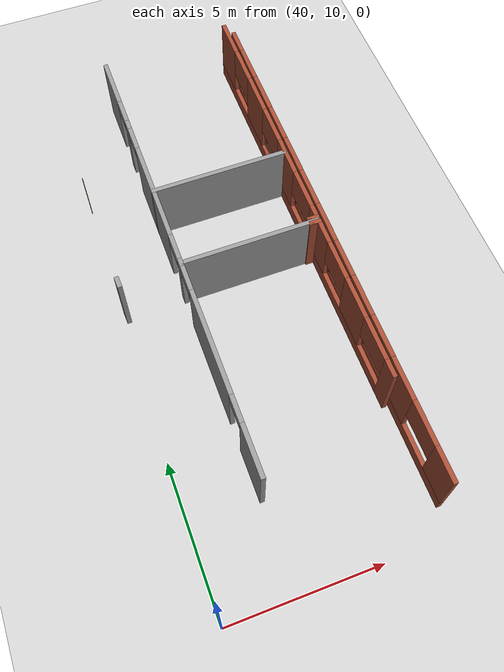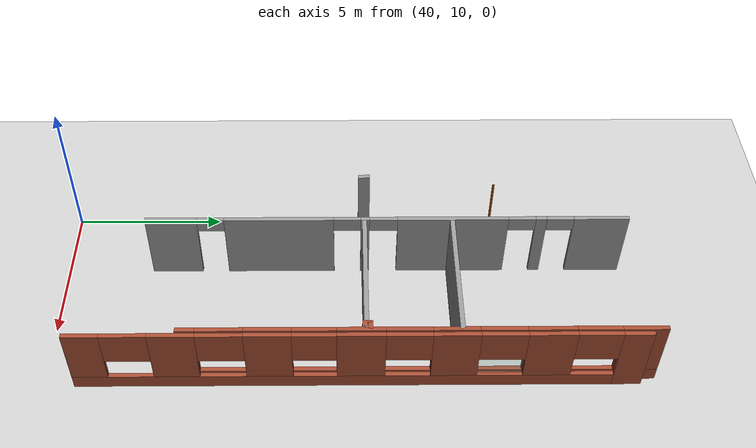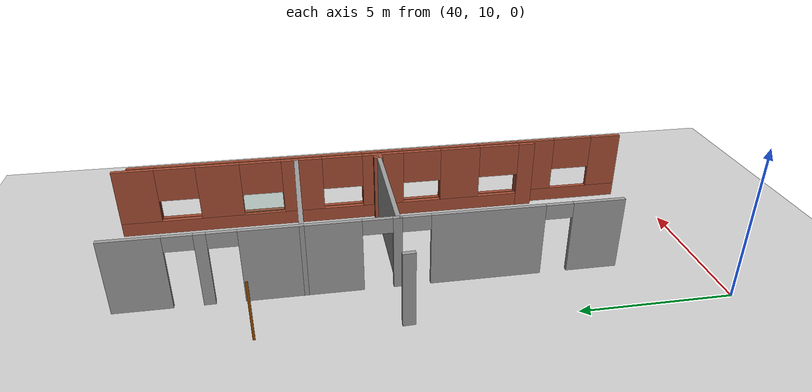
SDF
<sdf version="1.6">
 <world name="default">
  <model name="ground_plane">
   <static>1</static>
   <link name="link">
    <collision name="collision">
     <geometry><plane><normal>0 0 1</normal><size>100 100</size></plane></geometry>
     <surface><friction><ode><mu>100</mu><mu2>50</mu2></ode></friction></surface>
    </collision>
    <visual name="visual">
     <cast_shadows>0</cast_shadows>
     <geometry><plane><normal>0 0 1</normal><size>100 100</size></plane></geometry>
     <material>
      <script><uri>file://media/materials/scripts/gazebo.material</uri><name>Gazebo/Grey</name></script>
     </material>
    </visual>
   </link>
  </model>
  <model name="CVSSP">
   <pose>23.8714 24.094 0 0 -0 0</pose>
   <link name="Wall_134">
    <pose>23.0834 -2.24791 0 0 -0 1.57065</pose>
    <visual name="Wall_134_Visual_0">
     <pose>-7.19251 0 1.25 0 -0 0</pose>
     <geometry><box><size>0.601822 0.15 2.5</size></box></geometry>
     <material>
      <script><uri>file://media/materials/scripts/gazebo.material</uri><name>Gazebo/Bricks</name></script>
      <ambient>1 1 1 1</ambient>
     </material>
    </visual>
    <collision name="Wall_134_Collision_0">
     <geometry><box><size>0.601822 0.15 2.5</size></box></geometry>
     <pose>-7.19251 0 1.25 0 -0 0</pose>
    </collision>
    <visual name="Wall_134_Visual_1">
     <pose>0.300911 0 0.25 0 -0 0</pose>
     <geometry><box><size>14.385 0.15 0.5</size></box></geometry>
     <material>
      <script><uri>file://media/materials/scripts/gazebo.material</uri><name>Gazebo/Bricks</name></script>
      <ambient>1 1 1 1</ambient>
     </material>
    </visual>
    <collision name="Wall_134_Collision_1">
     <geometry><box><size>14.385 0.15 0.5</size></box></geometry>
     <pose>0.300911 0 0.25 0 -0 0</pose>
    </collision>
    <visual name="Wall_134_Visual_2">
     <pose>-4.69343 0 1.5 0 -0 0</pose>
     <geometry><box><size>1.46267 0.15 2</size></box></geometry>
     <material>
      <script><uri>file://media/materials/scripts/gazebo.material</uri><name>Gazebo/Bricks</name></script>
      <ambient>1 1 1 1</ambient>
     </material>
    </visual>
    <collision name="Wall_134_Collision_2">
     <geometry><box><size>1.46267 0.15 2</size></box></geometry>
     <pose>-4.69343 0 1.5 0 -0 0</pose>
    </collision>
    <visual name="Wall_134_Visual_3">
     <pose>-1.84084 0 1.5 0 -0 0</pose>
     <geometry><box><size>1.4912 0.15 2</size></box></geometry>
     <material>
      <script><uri>file://media/materials/scripts/gazebo.material</uri><name>Gazebo/Bricks</name></script>
      <ambient>1 1 1 1</ambient>
     </material>
    </visual>
    <collision name="Wall_134_Collision_3">
     <geometry><box><size>1.4912 0.15 2</size></box></geometry>
     <pose>-1.84084 0 1.5 0 -0 0</pose>
    </collision>
    <visual name="Wall_134_Visual_4">
     <pose>1.05448 0 1.5 0 -0 0</pose>
     <geometry><box><size>1.43416 0.15 2</size></box></geometry>
     <material>
      <script><uri>file://media/materials/scripts/gazebo.material</uri><name>Gazebo/Bricks</name></script>
      <ambient>1 1 1 1</ambient>
     </material>
    </visual>
    <collision name="Wall_134_Collision_4">
     <geometry><box><size>1.43416 0.15 2</size></box></geometry>
     <pose>1.05448 0 1.5 0 -0 0</pose>
    </collision>
    <visual name="Wall_134_Visual_5">
     <pose>3.9612 0 1.5 0 -0 0</pose>
     <geometry><box><size>1.50259 0.15 2</size></box></geometry>
     <material>
      <script><uri>file://media/materials/scripts/gazebo.material</uri><name>Gazebo/Bricks</name></script>
      <ambient>1 1 1 1</ambient>
     </material>
    </visual>
    <collision name="Wall_134_Collision_5">
     <geometry><box><size>1.50259 0.15 2</size></box></geometry>
     <pose>3.9612 0 1.5 0 -0 0</pose>
    </collision>
    <visual name="Wall_134_Visual_6">
     <pose>6.79134 0 1.5 0 -0 0</pose>
     <geometry><box><size>1.40418 0.15 2</size></box></geometry>
     <material>
      <script><uri>file://media/materials/scripts/gazebo.material</uri><name>Gazebo/Bricks</name></script>
      <ambient>1 1 1 1</ambient>
     </material>
    </visual>
    <collision name="Wall_134_Collision_6">
     <geometry><box><size>1.40418 0.15 2</size></box></geometry>
     <pose>6.79134 0 1.5 0 -0 0</pose>
    </collision>
    <visual name="Wall_134_Visual_7">
     <pose>-6.15818 0 1.9 0 -0 0</pose>
     <geometry><box><size>1.46684 0.15 1.2</size></box></geometry>
     <material>
      <script><uri>file://media/materials/scripts/gazebo.material</uri><name>Gazebo/Bricks</name></script>
      <ambient>1 1 1 1</ambient>
     </material>
    </visual>
    <collision name="Wall_134_Collision_7">
     <geometry><box><size>1.46684 0.15 1.2</size></box></geometry>
     <pose>-6.15818 0 1.9 0 -0 0</pose>
    </collision>
    <visual name="Wall_134_Visual_8">
     <pose>-3.27427 0 1.9 0 -0 0</pose>
     <geometry><box><size>1.37565 0.15 1.2</size></box></geometry>
     <material>
      <script><uri>file://media/materials/scripts/gazebo.material</uri><name>Gazebo/Bricks</name></script>
      <ambient>1 1 1 1</ambient>
     </material>
    </visual>
    <collision name="Wall_134_Collision_8">
     <geometry><box><size>1.37565 0.15 1.2</size></box></geometry>
     <pose>-3.27427 0 1.9 0 -0 0</pose>
    </collision>
    <visual name="Wall_134_Visual_9">
     <pose>-0.378919 0 1.9 0 -0 0</pose>
     <geometry><box><size>1.43264 0.15 1.2</size></box></geometry>
     <material>
      <script><uri>file://media/materials/scripts/gazebo.material</uri><name>Gazebo/Bricks</name></script>
      <ambient>1 1 1 1</ambient>
     </material>
    </visual>
    <collision name="Wall_134_Collision_9">
     <geometry><box><size>1.43264 0.15 1.2</size></box></geometry>
     <pose>-0.378919 0 1.9 0 -0 0</pose>
    </collision>
    <visual name="Wall_134_Visual_10">
     <pose>2.49073 0 1.9 0 -0 0</pose>
     <geometry><box><size>1.43834 0.15 1.2</size></box></geometry>
     <material>
      <script><uri>file://media/materials/scripts/gazebo.material</uri><name>Gazebo/Bricks</name></script>
      <ambient>1 1 1 1</ambient>
     </material>
    </visual>
    <collision name="Wall_134_Collision_10">
     <geometry><box><size>1.43834 0.15 1.2</size></box></geometry>
     <pose>2.49073 0 1.9 0 -0 0</pose>
    </collision>
    <visual name="Wall_134_Visual_11">
     <pose>5.40087 0 1.9 0 -0 0</pose>
     <geometry><box><size>1.37675 0.15 1.2</size></box></geometry>
     <material>
      <script><uri>file://media/materials/scripts/gazebo.material</uri><name>Gazebo/Bricks</name></script>
      <ambient>1 1 1 1</ambient>
     </material>
    </visual>
    <collision name="Wall_134_Collision_11">
     <geometry><box><size>1.37675 0.15 1.2</size></box></geometry>
     <pose>5.40087 0 1.9 0 -0 0</pose>
    </collision>
   </link>
   <link name="Wall_148">
    <pose>23.2939 -4.18787 0 0 0 -1.5707</pose>
    <visual name="Wall_148_Visual_0">
     <pose>-8.49404 0 1.25 0 -0 0</pose>
     <geometry><box><size>0.935478 0.15 2.5</size></box></geometry>
     <material>
      <script><uri>file://media/materials/scripts/gazebo.material</uri><name>Gazebo/Bricks</name></script>
      <ambient>1 1 1 1</ambient>
     </material>
    </visual>
    <collision name="Wall_148_Collision_0">
     <geometry><box><size>0.935478 0.15 2.5</size></box></geometry>
     <pose>-8.49404 0 1.25 0 -0 0</pose>
    </collision>
    <visual name="Wall_148_Visual_1">
     <pose>0.467739 0 0.25 0 -0 0</pose>
     <geometry><box><size>16.9881 0.15 0.5</size></box></geometry>
     <material>
      <script><uri>file://media/materials/scripts/gazebo.material</uri><name>Gazebo/Bricks</name></script>
      <ambient>1 1 1 1</ambient>
     </material>
    </visual>
    <collision name="Wall_148_Collision_1">
     <geometry><box><size>16.9881 0.15 0.5</size></box></geometry>
     <pose>0.467739 0 0.25 0 -0 0</pose>
    </collision>
    <visual name="Wall_148_Visual_2">
     <pose>-5.90972 0 1.5 0 -0 0</pose>
     <geometry><box><size>1.49689 0.15 2</size></box></geometry>
     <material>
      <script><uri>file://media/materials/scripts/gazebo.material</uri><name>Gazebo/Bricks</name></script>
      <ambient>1 1 1 1</ambient>
     </material>
    </visual>
    <collision name="Wall_148_Collision_2">
     <geometry><box><size>1.49689 0.15 2</size></box></geometry>
     <pose>-5.90972 0 1.5 0 -0 0</pose>
    </collision>
    <visual name="Wall_148_Visual_3">
     <pose>-3.00584 0 1.5 0 -0 0</pose>
     <geometry><box><size>1.45698 0.15 2</size></box></geometry>
     <material>
      <script><uri>file://media/materials/scripts/gazebo.material</uri><name>Gazebo/Bricks</name></script>
      <ambient>1 1 1 1</ambient>
     </material>
    </visual>
    <collision name="Wall_148_Collision_3">
     <geometry><box><size>1.45698 0.15 2</size></box></geometry>
     <pose>-3.00584 0 1.5 0 -0 0</pose>
    </collision>
    <visual name="Wall_148_Visual_4">
     <pose>-0.101966 0 1.5 0 -0 0</pose>
     <geometry><box><size>1.50828 0.15 2</size></box></geometry>
     <material>
      <script><uri>file://media/materials/scripts/gazebo.material</uri><name>Gazebo/Bricks</name></script>
      <ambient>1 1 1 1</ambient>
     </material>
    </visual>
    <collision name="Wall_148_Collision_4">
     <geometry><box><size>1.50828 0.15 2</size></box></geometry>
     <pose>-0.101966 0 1.5 0 -0 0</pose>
    </collision>
    <visual name="Wall_148_Visual_5">
     <pose>2.74776 0 1.5 0 -0 0</pose>
     <geometry><box><size>1.46268 0.15 2</size></box></geometry>
     <material>
      <script><uri>file://media/materials/scripts/gazebo.material</uri><name>Gazebo/Bricks</name></script>
      <ambient>1 1 1 1</ambient>
     </material>
    </visual>
    <collision name="Wall_148_Collision_5">
     <geometry><box><size>1.46268 0.15 2</size></box></geometry>
     <pose>2.74776 0 1.5 0 -0 0</pose>
    </collision>
    <visual name="Wall_148_Visual_6">
     <pose>5.65733 0 1.5 0 -0 0</pose>
     <geometry><box><size>1.44558 0.15 2</size></box></geometry>
     <material>
      <script><uri>file://media/materials/scripts/gazebo.material</uri><name>Gazebo/Bricks</name></script>
      <ambient>1 1 1 1</ambient>
     </material>
    </visual>
    <collision name="Wall_148_Collision_6">
     <geometry><box><size>1.44558 0.15 2</size></box></geometry>
     <pose>5.65733 0 1.5 0 -0 0</pose>
    </collision>
    <visual name="Wall_148_Visual_7">
     <pose>8.39012 0 1.5 0 -0 0</pose>
     <geometry><box><size>1.14332 0.15 2</size></box></geometry>
     <material>
      <script><uri>file://media/materials/scripts/gazebo.material</uri><name>Gazebo/Bricks</name></script>
      <ambient>1 1 1 1</ambient>
     </material>
    </visual>
    <collision name="Wall_148_Collision_7">
     <geometry><box><size>1.14332 0.15 2</size></box></geometry>
     <pose>8.39012 0 1.5 0 -0 0</pose>
    </collision>
    <visual name="Wall_148_Visual_8">
     <pose>-7.34223 0 1.9 0 -0 0</pose>
     <geometry><box><size>1.36813 0.15 1.2</size></box></geometry>
     <material>
      <script><uri>file://media/materials/scripts/gazebo.material</uri><name>Gazebo/Bricks</name></script>
      <ambient>1 1 1 1</ambient>
     </material>
    </visual>
    <collision name="Wall_148_Collision_8">
     <geometry><box><size>1.36813 0.15 1.2</size></box></geometry>
     <pose>-7.34223 0 1.9 0 -0 0</pose>
    </collision>
    <visual name="Wall_148_Visual_9">
     <pose>-4.4478 0 1.9 0 -0 0</pose>
     <geometry><box><size>1.42694 0.15 1.2</size></box></geometry>
     <material>
      <script><uri>file://media/materials/scripts/gazebo.material</uri><name>Gazebo/Bricks</name></script>
      <ambient>1 1 1 1</ambient>
     </material>
    </visual>
    <collision name="Wall_148_Collision_9">
     <geometry><box><size>1.42694 0.15 1.2</size></box></geometry>
     <pose>-4.4478 0 1.9 0 -0 0</pose>
    </collision>
    <visual name="Wall_148_Visual_10">
     <pose>-1.56673 0 1.9 0 -0 0</pose>
     <geometry><box><size>1.42124 0.15 1.2</size></box></geometry>
     <material>
      <script><uri>file://media/materials/scripts/gazebo.material</uri><name>Gazebo/Bricks</name></script>
      <ambient>1 1 1 1</ambient>
     </material>
    </visual>
    <collision name="Wall_148_Collision_10">
     <geometry><box><size>1.42124 0.15 1.2</size></box></geometry>
     <pose>-1.56673 0 1.9 0 -0 0</pose>
    </collision>
    <visual name="Wall_148_Visual_11">
     <pose>1.3343 0 1.9 0 -0 0</pose>
     <geometry><box><size>1.36425 0.15 1.2</size></box></geometry>
     <material>
      <script><uri>file://media/materials/scripts/gazebo.material</uri><name>Gazebo/Bricks</name></script>
      <ambient>1 1 1 1</ambient>
     </material>
    </visual>
    <collision name="Wall_148_Collision_11">
     <geometry><box><size>1.36425 0.15 1.2</size></box></geometry>
     <pose>1.3343 0 1.9 0 -0 0</pose>
    </collision>
    <visual name="Wall_148_Visual_12">
     <pose>4.20682 0 1.9 0 -0 0</pose>
     <geometry><box><size>1.45543 0.15 1.2</size></box></geometry>
     <material>
      <script><uri>file://media/materials/scripts/gazebo.material</uri><name>Gazebo/Bricks</name></script>
      <ambient>1 1 1 1</ambient>
     </material>
    </visual>
    <collision name="Wall_148_Collision_12">
     <geometry><box><size>1.45543 0.15 1.2</size></box></geometry>
     <pose>4.20682 0 1.9 0 -0 0</pose>
    </collision>
    <visual name="Wall_148_Visual_13">
     <pose>7.09929 0 1.9 0 -0 0</pose>
     <geometry><box><size>1.43834 0.15 1.2</size></box></geometry>
     <material>
      <script><uri>file://media/materials/scripts/gazebo.material</uri><name>Gazebo/Bricks</name></script>
      <ambient>1 1 1 1</ambient>
     </material>
    </visual>
    <collision name="Wall_148_Collision_13">
     <geometry><box><size>1.43834 0.15 1.2</size></box></geometry>
     <pose>7.09929 0 1.9 0 -0 0</pose>
    </collision>
   </link>
   <link name="Wall_168">
    <collision name="Wall_168_Collision">
     <geometry><box><size>4.75 0.15 2.5</size></box></geometry>
     <pose>0 0 1.25 0 -0 0</pose>
    </collision>
    <visual name="Wall_168_Visual">
     <pose>0 0 1.25 0 -0 0</pose>
     <geometry><box><size>4.75 0.15 2.5</size></box></geometry>
     <material>
      <script><uri>file://media/materials/scripts/gazebo.material</uri><name>Gazebo/Grey</name></script>
      <ambient>0.588235 0.588235 0.588235 1</ambient>
     </material>
    </visual>
    <pose>20.7514 -3.92247 0 0 -0 0</pose>
   </link>
   <link name="Wall_170">
    <collision name="Wall_170_Collision">
     <geometry><box><size>4.75 0.15 2.5</size></box></geometry>
     <pose>0 0 1.25 0 -0 0</pose>
    </collision>
    <visual name="Wall_170_Visual">
     <pose>0 0 1.25 0 -0 0</pose>
     <geometry><box><size>4.75 0.15 2.5</size></box></geometry>
     <material>
      <script><uri>file://media/materials/scripts/gazebo.material</uri><name>Gazebo/Grey</name></script>
      <ambient>0.588235 0.588235 0.588235 1</ambient>
     </material>
    </visual>
    <pose>20.7313 -1.006 0 0 -0 0</pose>
   </link>
   <link name="Wall_67">
    <pose>18.433 -3.16776 0 0 -0 1.57026</pose>
    <visual name="Wall_67_Visual_0">
     <pose>-7.18077 0 1.25 0 -0 0</pose>
     <geometry><box><size>1.71739 0.15 2.5</size></box></geometry>
     <material>
      <script><uri>file://media/materials/scripts/gazebo.material</uri><name>Gazebo/Grey</name></script>
      <ambient>0.588235 0.588235 0.588235 1</ambient>
     </material>
    </visual>
    <collision name="Wall_67_Collision_0">
     <geometry><box><size>1.71739 0.15 2.5</size></box></geometry>
     <pose>-7.18077 0 1.25 0 -0 0</pose>
    </collision>
    <visual name="Wall_67_Visual_1">
     <pose>-3.59924 0 1.25 0 -0 0</pose>
     <geometry><box><size>3.64566 0.15 2.5</size></box></geometry>
     <material>
      <script><uri>file://media/materials/scripts/gazebo.material</uri><name>Gazebo/Grey</name></script>
      <ambient>0.588235 0.588235 0.588235 1</ambient>
     </material>
    </visual>
    <collision name="Wall_67_Collision_1">
     <geometry><box><size>3.64566 0.15 2.5</size></box></geometry>
     <pose>-3.59924 0 1.25 0 -0 0</pose>
    </collision>
    <visual name="Wall_67_Visual_2">
     <pose>-0.733075 0 1.25 0 -0 0</pose>
     <geometry><box><size>0.286679 0.15 2.5</size></box></geometry>
     <material>
      <script><uri>file://media/materials/scripts/gazebo.material</uri><name>Gazebo/Grey</name></script>
      <ambient>0.588235 0.588235 0.588235 1</ambient>
     </material>
    </visual>
    <collision name="Wall_67_Collision_2">
     <geometry><box><size>0.286679 0.15 2.5</size></box></geometry>
     <pose>-0.733075 0 1.25 0 -0 0</pose>
    </collision>
    <visual name="Wall_67_Visual_3">
     <pose>2.19347 0 1.25 0 -0 0</pose>
     <geometry><box><size>3.68595 0.15 2.5</size></box></geometry>
     <material>
      <script><uri>file://media/materials/scripts/gazebo.material</uri><name>Gazebo/Grey</name></script>
      <ambient>0.588235 0.588235 0.588235 1</ambient>
     </material>
    </visual>
    <collision name="Wall_67_Collision_3">
     <geometry><box><size>3.68595 0.15 2.5</size></box></geometry>
     <pose>2.19347 0 1.25 0 -0 0</pose>
    </collision>
    <visual name="Wall_67_Visual_4">
     <pose>5.11998 0 1.25 0 -0 0</pose>
     <geometry><box><size>0.36709 0.15 2.5</size></box></geometry>
     <material>
      <script><uri>file://media/materials/scripts/gazebo.material</uri><name>Gazebo/Grey</name></script>
      <ambient>0.588235 0.588235 0.588235 1</ambient>
     </material>
    </visual>
    <collision name="Wall_67_Collision_4">
     <geometry><box><size>0.36709 0.15 2.5</size></box></geometry>
     <pose>5.11998 0 1.25 0 -0 0</pose>
    </collision>
    <visual name="Wall_67_Visual_5">
     <pose>7.1215 0 1.25 0 -0 0</pose>
     <geometry><box><size>1.83593 0.15 2.5</size></box></geometry>
     <material>
      <script><uri>file://media/materials/scripts/gazebo.material</uri><name>Gazebo/Grey</name></script>
      <ambient>0.588235 0.588235 0.588235 1</ambient>
     </material>
    </visual>
    <collision name="Wall_67_Collision_5">
     <geometry><box><size>1.83593 0.15 2.5</size></box></geometry>
     <pose>7.1215 0 1.25 0 -0 0</pose>
    </collision>
    <visual name="Wall_67_Visual_6">
     <pose>-5.87207 0 2.25 0 -0 0</pose>
     <geometry><box><size>0.9 0.15 0.5</size></box></geometry>
     <material>
      <script><uri>file://media/materials/scripts/gazebo.material</uri><name>Gazebo/Grey</name></script>
      <ambient>0.588235 0.588235 0.588235 1</ambient>
     </material>
    </visual>
    <collision name="Wall_67_Collision_6">
     <geometry><box><size>0.9 0.15 0.5</size></box></geometry>
     <pose>-5.87207 0 2.25 0 -0 0</pose>
    </collision>
    <visual name="Wall_67_Visual_7">
     <pose>-1.32641 0 2.25 0 -0 0</pose>
     <geometry><box><size>0.9 0.15 0.5</size></box></geometry>
     <material>
      <script><uri>file://media/materials/scripts/gazebo.material</uri><name>Gazebo/Grey</name></script>
      <ambient>0.588235 0.588235 0.588235 1</ambient>
     </material>
    </visual>
    <collision name="Wall_67_Collision_7">
     <geometry><box><size>0.9 0.15 0.5</size></box></geometry>
     <pose>-1.32641 0 2.25 0 -0 0</pose>
    </collision>
    <visual name="Wall_67_Visual_8">
     <pose>-0.119622 0 2.25 0 -0 0</pose>
     <geometry><box><size>0.940227 0.15 0.5</size></box></geometry>
     <material>
      <script><uri>file://media/materials/scripts/gazebo.material</uri><name>Gazebo/Grey</name></script>
      <ambient>0.588235 0.588235 0.588235 1</ambient>
     </material>
    </visual>
    <collision name="Wall_67_Collision_8">
     <geometry><box><size>0.940227 0.15 0.5</size></box></geometry>
     <pose>-0.119622 0 2.25 0 -0 0</pose>
    </collision>
    <visual name="Wall_67_Visual_9">
     <pose>4.48644 0 2.25 0 -0 0</pose>
     <geometry><box><size>0.9 0.15 0.5</size></box></geometry>
     <material>
      <script><uri>file://media/materials/scripts/gazebo.material</uri><name>Gazebo/Grey</name></script>
      <ambient>0.588235 0.588235 0.588235 1</ambient>
     </material>
    </visual>
    <collision name="Wall_67_Collision_9">
     <geometry><box><size>0.9 0.15 0.5</size></box></geometry>
     <pose>4.48644 0 2.25 0 -0 0</pose>
    </collision>
    <visual name="Wall_67_Visual_10">
     <pose>5.75353 0 2.25 0 -0 0</pose>
     <geometry><box><size>0.9 0.15 0.5</size></box></geometry>
     <material>
      <script><uri>file://media/materials/scripts/gazebo.material</uri><name>Gazebo/Grey</name></script>
      <ambient>0.588235 0.588235 0.588235 1</ambient>
     </material>
    </visual>
    <collision name="Wall_67_Collision_10">
     <geometry><box><size>0.9 0.15 0.5</size></box></geometry>
     <pose>5.75353 0 2.25 0 -0 0</pose>
    </collision>
   </link>
   <link name="Wall_740">
    <collision name="Wall_740_Collision">
     <geometry><box><size>0.395485 0.15 2.5</size></box></geometry>
     <pose>0 0 1.25 0 -0 0</pose>
    </collision>
    <visual name="Wall_740_Visual">
     <pose>0 0 1.25 0 -0 0</pose>
     <geometry><box><size>0.395485 0.15 2.5</size></box></geometry>
     <material>
      <script><uri>file://media/materials/scripts/gazebo.material</uri><name>Gazebo/Grey</name></script>
      <ambient>1 1 1 1</ambient>
     </material>
    </visual>
    <pose>16.3981 -3.90583 0 0 0 -1.5351</pose>
   </link>
   <link name="Wall_745">
    <collision name="Wall_745_Collision">
     <geometry><box><size>0.4145 0.15 2.5</size></box></geometry>
     <pose>0 0 1.25 0 -0 0</pose>
    </collision>
    <visual name="Wall_745_Visual">
     <pose>0 0 1.25 0 -0 0</pose>
     <geometry><box><size>0.4145 0.15 2.5</size></box></geometry>
     <material>
      <script><uri>file://media/materials/scripts/gazebo.material</uri><name>Gazebo/Bricks</name></script>
      <ambient>1 1 1 1</ambient>
     </material>
    </visual>
    <pose>22.9482 -3.80796 0 0 -0 3.14159</pose>
   </link>
   <link name="Wall_746">
    <collision name="Wall_746_Collision">
     <geometry><box><size>0.31675 0.15 2.5</size></box></geometry>
     <pose>0 0 1.25 0 -0 0</pose>
    </collision>
    <visual name="Wall_746_Visual">
     <pose>0 0 1.25 0 -0 0</pose>
     <geometry><box><size>0.31675 0.15 2.5</size></box></geometry>
     <material>
      <script><uri>file://media/materials/scripts/gazebo.material</uri><name>Gazebo/Bricks</name></script>
      <ambient>1 1 1 1</ambient>
     </material>
    </visual>
    <pose>22.816 -3.89133 0 0 0 -1.5708</pose>
   </link>
   <link name="Wall_747">
    <collision name="Wall_747_Collision">
     <geometry><box><size>0.420495 0.15 2.5</size></box></geometry>
     <pose>0 0 1.25 0 -0 0</pose>
    </collision>
    <visual name="Wall_747_Visual">
     <pose>0 0 1.25 0 -0 0</pose>
     <geometry><box><size>0.420495 0.15 2.5</size></box></geometry>
     <material>
      <script><uri>file://media/materials/scripts/gazebo.material</uri><name>Gazebo/Bricks</name></script>
      <ambient>1 1 1 1</ambient>
     </material>
    </visual>
    <pose>22.9511 -3.97471 0 0 -0 0</pose>
   </link>
   <static>1</static>
  </model>
  <model name="window_0_clone_clone_clone_1">
   <link name="link">
    <inertial>
     <mass>0.185318</mass>
     <inertia>
      <ixx>0.0157792</ixx>
      <ixy>0</ixy>
      <ixz>0</ixz>
      <iyy>0.0398142</iyy>
      <iyz>0</iyz>
      <izz>0.0247071</izz>
     </inertia>
    </inertial>
    <visual name="visual">
     <geometry><box><size>1.44901 0.147514 0.798588</size></box></geometry>
     <material>
      <script><name>Gazebo/Grey</name><uri>file://media/materials/scripts/gazebo.material</uri></script>
      <shader type="pixel"><normal_map>__default__</normal_map></shader>
      <ambient>0.435 0.796 0.675 1</ambient>
      <diffuse>0.7 0.7 0.7 1</diffuse>
      <specular>0.01 0.01 0.01 1</specular>
      <emissive>0 0 0 1</emissive>
     </material>
     <transparency>0.8</transparency>
    </visual>
    <collision name="collision">
     <geometry><box><size>1.44901 0.147514 0.798588</size></box></geometry>
     <surface>
      <friction>
       <ode><mu>1</mu><mu2>1</mu2><fdir1>0 0 0</fdir1><slip1>0</slip1><slip2>0</slip2></ode>
       <torsional>
        <coefficient>1</coefficient>
        <patch_radius>0</patch_radius>
        <surface_radius>0</surface_radius>
        <use_patch_radius>1</use_patch_radius>
        <ode><slip>0</slip></ode>
       </torsional>
      </friction>
      <bounce><restitution_coefficient>0</restitution_coefficient><threshold>1e+06</threshold></bounce>
      <contact>
       <collide_without_contact>0</collide_without_contact>
       <collide_without_contact_bitmask>1</collide_without_contact_bitmask>
       <collide_bitmask>1</collide_bitmask>
       <ode>
        <soft_cfm>0</soft_cfm>
        <soft_erp>0.2</soft_erp>
        <kp>1e+13</kp>
        <kd>1</kd>
        <max_vel>0.01</max_vel>
        <min_depth>0</min_depth>
       </ode>
       <bullet>
        <split_impulse>1</split_impulse>
        <split_impulse_penetration_threshold>-0.01</split_impulse_penetration_threshold>
        <soft_cfm>0</soft_cfm>
        <soft_erp>0.2</soft_erp>
        <kp>1e+13</kp>
        <kd>1</kd>
       </bullet>
      </contact>
     </surface>
    </collision>
   </link>
   <static>1</static>
   <pose>47.066 24.3818 0.904256 0 -0 1.57547</pose>
  </model>
  <model name="oak_frame_0_clone">
   <link name="link">
    <inertial>
     <mass>1</mass>
     <inertia>
      <ixx>0.166667</ixx>
      <ixy>0</ixy>
      <ixz>0</ixz>
      <iyy>0.166667</iyy>
      <iyz>0</iyz>
      <izz>0.166667</izz>
     </inertia>
    </inertial>
    <visual name="visual">
     <geometry><box><size>0.018685 0.076446 2.026</size></box></geometry>
     <material>
      <script><name>Gazebo/Grey</name><uri>file://media/materials/scripts/gazebo.material</uri></script>
      <shader type="pixel"><normal_map>__default__</normal_map></shader>
      <diffuse>0.58 0.29 0 0</diffuse>
      <ambient>0.58 0.29 0 1</ambient>
      <specular>0.01 0.01 0.01 1</specular>
      <emissive>0 0 0 1</emissive>
     </material>
    </visual>
    <collision name="collision">
     <geometry><box><size>0.018685 0.076446 2.026</size></box></geometry>
     <surface>
      <friction>
       <ode><mu>1</mu><mu2>1</mu2><fdir1>0 0 0</fdir1><slip1>0</slip1><slip2>0</slip2></ode>
       <torsional>
        <coefficient>1</coefficient>
        <patch_radius>0</patch_radius>
        <surface_radius>0</surface_radius>
        <use_patch_radius>1</use_patch_radius>
        <ode><slip>0</slip></ode>
       </torsional>
      </friction>
      <bounce><restitution_coefficient>0</restitution_coefficient><threshold>1e+06</threshold></bounce>
      <contact>
       <collide_without_contact>0</collide_without_contact>
       <collide_without_contact_bitmask>1</collide_without_contact_bitmask>
       <collide_bitmask>1</collide_bitmask>
       <ode>
        <soft_cfm>0</soft_cfm>
        <soft_erp>0.2</soft_erp>
        <kp>1e+13</kp>
        <kd>1</kd>
        <max_vel>0.01</max_vel>
        <min_depth>0</min_depth>
       </ode>
       <bullet>
        <split_impulse>1</split_impulse>
        <split_impulse_penetration_threshold>-0.01</split_impulse_penetration_threshold>
        <soft_cfm>0</soft_cfm>
        <soft_erp>0.2</soft_erp>
        <kp>1e+13</kp>
        <kd>1</kd>
       </bullet>
      </contact>
     </surface>
    </collision>
   </link>
   <static>1</static>
   <pose>40.2515 24.6922 1.03242 0 -0 0</pose>
  </model>
 </world>
</sdf>
